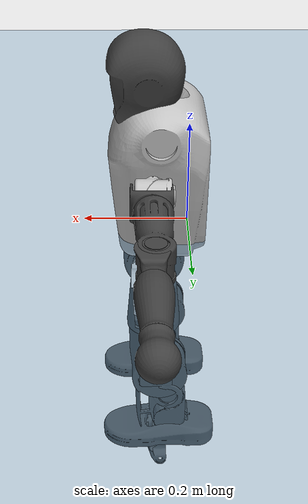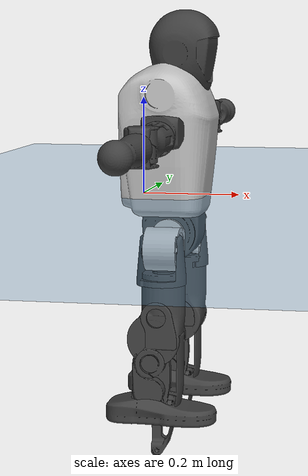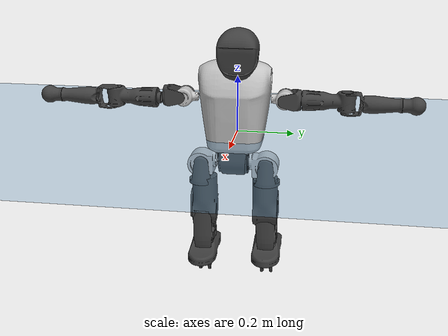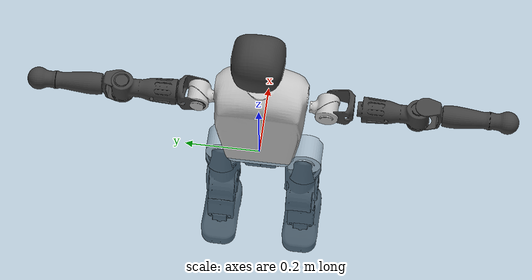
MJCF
<mujoco model="T1">
  <compiler angle="radian" assetdir="assets" balanceinertia="true" inertiafromgeom="false"/>

  <option timestep="0.005" density="1.2" viscosity="2e-05"/>

  <size nkey="1"/>

  <visual>
    <quality shadowsize="8192"/>
    <map shadowclip="0.5"/>
  </visual>

  <default>
    <default class="/">
      <joint armature="0.01" damping="0.01" frictionloss="0.1"/>
      <geom contype="0" conaffinity="0" group="1" solref="-1000 -80"/>
      <site size="0.01 0.005 0.005" group="5"/>
      <general forcelimited="true" biastype="affine" gainprm="25" biasprm="0 -25 -0.6"/>
      <default class="t1">
        <geom rgba="0.25 0.25 0.25 1"/>
        <default class="visual">
          <geom type="mesh" group="2"/>
        </default>
        <default class="collision">
          <geom group="3"/>
        </default>
        <default class="foot">
          <geom size="0.1115 0.05 0.015" type="box" condim="6" group="4" priority="1" solimp="0.015 1 0.015"/>
        </default>
        <default class="reward_collision_sphere">
          <geom group="5" rgba="1 0 0 1"/>
        </default>
      </default>
    </default>
  </default>

  <asset>
    <texture type="skybox" colorspace="auto" name="//unnamed_texture_0" builtin="gradient" rgb1="0.95 0.95 0.95" rgb2="0.95 0.95 0.95" width="100" height="600"/>
    <texture type="2d" colorspace="auto" name="texplane" builtin="checker" rgb1="0.345 0.575 0.748" rgb2="0.345 0.575 0.748" markrgb="1 1 1" width="512" height="512"/>
    <material name="MatPlane" class="/" texture="texplane" texuniform="true" texrepeat="2 2" specular="0.9"/>
    <mesh name="Trunk" class="/" file="Trunk.stl"/>
    <mesh name="H1" class="/" file="H1.stl"/>
    <mesh name="H2" class="/" file="H2.stl"/>
    <mesh name="AL1" class="/" file="AL1.stl"/>
    <mesh name="AL2" class="/" file="AL2.stl"/>
    <mesh name="AL3" class="/" file="AL3.stl"/>
    <mesh name="left_hand_link" class="/" file="left_hand_link.stl"/>
    <mesh name="AR1" class="/" file="AR1.stl"/>
    <mesh name="AR2" class="/" file="AR2.stl"/>
    <mesh name="AR3" class="/" file="AR3.stl"/>
    <mesh name="right_hand_link" class="/" file="right_hand_link.stl"/>
    <mesh name="Waist" class="/" file="Waist.stl"/>
    <mesh name="Hip_Pitch_Left" class="/" file="Hip_Pitch_Left.stl"/>
    <mesh name="Hip_Roll_Left" class="/" file="Hip_Roll_Left.stl"/>
    <mesh name="Hip_Yaw_Left" class="/" file="Hip_Yaw_Left.stl"/>
    <mesh name="Shank_Left" class="/" file="Shank_Left.stl"/>
    <mesh name="Ankle_Cross_Left" class="/" file="Ankle_Cross_Left.stl"/>
    <mesh name="left_foot_link" class="/" file="left_foot_link.stl"/>
    <mesh name="Hip_Pitch_Right" class="/" file="Hip_Pitch_Right.stl"/>
    <mesh name="Hip_Roll_Right" class="/" file="Hip_Roll_Right.stl"/>
    <mesh name="Hip_Yaw_Right" class="/" file="Hip_Yaw_Right.stl"/>
    <mesh name="Shank_Right" class="/" file="Shank_Right.stl"/>
    <mesh name="Ankle_Cross_Right" class="/" file="Ankle_Cross_Right.stl"/>
    <mesh name="right_foot_link" class="/" file="right_foot_link.stl"/>
  </asset>

  <worldbody>
    <geom name="floor" class="/" size="100 100 0.125" type="plane" group="0" material="MatPlane"/>
    <light name="toplight_shadow" class="/" pos="0 0 5" dir="0.0990148 0.0990148 -0.990148" type="directional" ambient="0.04 0.04 0.04" diffuse="0.55 0.55 0.55" specular="0.12 0.12 0.12"/>
    <light name="toplight_fill" class="/" pos="0 0 5" dir="0.0990148 0.0990148 -0.990148" type="directional" castshadow="false" ambient="0.04 0.04 0.04" diffuse="0.3 0.3 0.3" specular="0.08 0.08 0.08"/>
    <body name="trunk" childclass="t1" pos="-0.00187447 -0.000358547 -0.00707311" quat="1 0.000328471 -0.000605139 4.92182e-05">
      <inertial pos="0.0625743 -0.00342583 0.0706456" quat="0.999728 0.0109993 -0.0192643 -0.00716178" mass="11.6425" diaginertia="0.174798 0.143631 0.00784692"/>
      <joint name="//unnamed_joint_0" type="free" armature="0" damping="0" frictionloss="0"/>
      <geom name="//unnamed_geom_1" class="visual" rgba="0.76 0.76 0.76 1" mesh="Trunk"/>
      <geom name="//unnamed_geom_2" class="collision" size="0.0729075 0.09721 0.145815" pos="0.0675075 0 0.0794303" type="box"/>
      <geom name="//unnamed_geom_3" class="reward_collision_sphere" size="0.111792" pos="0.0675075 0 0.0661919"/>
      <geom name="//unnamed_geom_4" class="reward_collision_sphere" size="0.0145815" pos="0.0675075 0.0959868 0"/>
      <geom name="//unnamed_geom_5" class="reward_collision_sphere" size="0.0145815" pos="0.0675075 -0.0959868 0"/>
      <geom name="//unnamed_geom_6" class="reward_collision_sphere" size="0.0145815" pos="0.0675075 0.12083 0.119145"/>
      <geom name="//unnamed_geom_7" class="reward_collision_sphere" size="0.0145815" pos="0.0675075 -0.12083 0.119145"/>
      <site name="imu" pos="-0.0528132 0.0424044 -0.0119733" size="0.009721"/>
      <camera name="track" pos="0 -2.25851 0" quat="0.707107 0.707107 0 0" mode="trackcom"/>
      <camera name="ego_camera" pos="0.137265 0 0.278006" quat="-0.5 -0.5 0.5 0.5"/>
      <body name="H1" pos="0.0721005 0.00418949 0.157374" quat="0.999998 -0.00193917 -0.00032023 -0.000488985">
        <inertial pos="-0.00257565 -0.00225876 0.0377766" quat="0.762316 -0.00936318 0.00221292 0.647133" mass="0.389499" diaginertia="0.000395011 0.000403473 1.68341e-05"/>
        <joint name="AAHead_yaw" pos="0 0 0" axis="0.0061188 0.00528914 0.999967" range="-1.61635 1.47552" armature="0.00942765" damping="0.00660836" frictionloss="0.100228"/>
        <geom name="//unnamed_geom_8" class="visual" mesh="H1"/>
        <body name="H2" pos="0.000449072 0.00909542 0.0406248" quat="1 0.00016641 0.000262895 0.000819684">
          <inertial pos="-0.00223282 -0.00823459 0.059948" quat="0.98785 0.105788 -0.0819734 -0.0790035" mass="0.516134" diaginertia="0.0036697 0.0036753 0.000221664"/>
          <joint name="Head_pitch" pos="0 0 0" axis="-0.0018949 -0.999998 0.000309939" range="-1.21613 0.243082" armature="0.0138283" damping="0.0238938" frictionloss="0.0953541"/>
          <geom name="//unnamed_geom_9" class="visual" mesh="H2"/>
          <geom name="//unnamed_geom_10" class="collision" size="0.077768" pos="0.0112512 0 0.0728111"/>
          <geom name="//unnamed_geom_11" class="reward_collision_sphere" size="0.087489" pos="0.0225025 0 0.0661919"/>
        </body>
      </body>
      <body name="AL1" pos="0.0717552 0.124048 0.148054" quat="0.999999 -0.00107219 0.000501175 0.000945735">
        <inertial pos="-0.00364531 0.0475238 -0.0092723" quat="0.518713 0.485249 -0.501245 0.49419" mass="0.497614" diaginertia="0.0024961 0.0024081 3.6764e-05"/>
        <joint name="Left_Shoulder_Pitch" pos="0 0 0" axis="-0.00309131 0.999982 -0.00517198" stiffness="0.0390224" range="-3.13354 1.32699" armature="0.00996102" damping="0.00950079" frictionloss="0.0950979"/>
        <geom name="//unnamed_geom_12" class="visual" rgba="0.76 0.76 0.76 1" mesh="AL1"/>
        <body name="AL2" pos="0.00316548 0.0443258 -0.000409103" quat="0.999986 0.000641497 -0.00438785 0.00292137">
          <inertial pos="0.00169609 0.0409219 0.00672855" quat="0.485208 0.510177 -0.490759 0.513272" mass="0.111676" diaginertia="0.000624611 0.000511024 1.97019e-05"/>
          <joint name="Left_Shoulder_Roll" pos="0 0 0" axis="-0.998263 0.0588953 0.00167094" stiffness="0.0176046" range="-1.47643 1.77934" armature="0.00806209" damping="0.0547641" frictionloss="0.105944"/>
          <geom name="//unnamed_geom_13" class="visual" mesh="AL2"/>
          <body name="AL3" pos="-0.00177071 0.0596295 -0.000263266" quat="0.999984 -0.000244722 0.00543913 0.00127119">
            <inertial pos="0.00163223 0.0982051 0.000853324" quat="0.728208 0.685047 0.0132253 -0.0157711" mass="0.823727" diaginertia="0.0200637 0.021273 7.26809e-05"/>
            <joint name="Left_Elbow_Pitch" pos="0 0 0" axis="-0.000778807 -0.999936 0.0113226" range="-2.21272 2.29888" armature="0.0105833" damping="0.00570942" frictionloss="0.105855"/>
            <geom name="//unnamed_geom_14" class="visual" mesh="AL3"/>
            <geom name="//unnamed_geom_15" class="collision" size="0.029163 0.0729075" pos="0 0.0564628 0" quat="0.707105 0.707108 0 0" type="cylinder"/>
            <geom name="//unnamed_geom_16" class="reward_collision_sphere" size="0.0349956"/>
            <body name="left_hand_link" pos="0.00503785 0.155947 -0.00501036" quat="0.999989 -0.00105237 -0.00322475 0.00325739">
              <inertial pos="-0.000753119 0.126565 0.00926095" quat="0.694009 0.718924 -0.0183337 0.0341048" mass="0.345382" diaginertia="0.016003 0.0174162 3.24074e-05"/>
              <joint name="Left_Elbow_Yaw" pos="0 0 0" axis="0.0311321 -0.0239449 0.999228" range="-2.42058 -0.140306" armature="0.00910673" damping="0.0307181" frictionloss="0.0459202"/>
              <geom name="//unnamed_geom_17" class="visual" mesh="left_hand_link"/>
              <geom name="//unnamed_geom_18" class="collision" size="0.029163 0.0850588" pos="0 0.146803 0" quat="0.707105 0.707108 0 0" type="cylinder"/>
              <geom name="//unnamed_geom_19" class="reward_collision_sphere" size="0.048605"/>
              <geom name="//unnamed_geom_20" class="reward_collision_sphere" size="0.0340235" pos="0 0.124218 0"/>
              <geom name="//unnamed_geom_21" class="reward_collision_sphere" size="0.0340235" pos="0 0.24279 0"/>
            </body>
          </body>
        </body>
      </body>
      <body name="AR1" pos="0.0726745 -0.125904 0.147425" quat="1 0.000184362 0.00068567 0.000250147">
        <inertial pos="0.00109475 -0.050801 0.00144052" quat="0.497156 0.495849 -0.509336 0.497541" mass="0.45831" diaginertia="0.0024766 0.00233823 3.56322e-05"/>
        <joint name="Right_Shoulder_Pitch" pos="0 0 0" axis="-0.0170131 -0.999822 -0.00813214" range="-1.41405 3.28723" armature="0.0088042" damping="0" frictionloss="0.0941802"/>
        <geom name="//unnamed_geom_22" class="visual" rgba="0.76 0.76 0.76 1" mesh="AR1"/>
        <body name="AR2" pos="0.00925632 -0.0597451 0.00312923" quat="0.999998 -0.000509229 0.000698073 -0.00151888">
          <inertial pos="0.00860147 -0.0451231 0.00615434" quat="0.508345 0.488029 -0.49863 0.504759" mass="0.144784" diaginertia="0.00078194 0.000701349 2.20185e-05"/>
          <joint name="Right_Shoulder_Roll" pos="0 0 0" axis="-0.999962 -0.00855454 0.00140147" range="-1.81229 1.75924" armature="0.0106163" damping="0.00623276" frictionloss="0.140823"/>
          <geom name="//unnamed_geom_23" class="visual" mesh="AR2"/>
          <body name="AR3" pos="0.00371643 -0.0787372 -0.00852747" quat="1 -0.00043622 0.000375543 -0.000289859">
            <inertial pos="-0.000616108 -0.0956201 0.00105388" quat="0.70248 0.709533 0.0258271 0.0491659" mass="0.989017" diaginertia="0.0245206 0.0221914 7.99104e-05"/>
            <joint name="Right_Elbow_Pitch" pos="0 0 0" axis="0.00117913 0.999999 0.000966909" range="-2.28997 2.23576" armature="0.00944244" damping="0" frictionloss="0.0501505"/>
            <geom name="//unnamed_geom_24" class="visual" mesh="AR3"/>
            <geom name="//unnamed_geom_25" class="collision" size="0.029163 0.0729075" pos="0 -0.0564628 0" quat="0.707105 0.707108 0 0" type="cylinder"/>
            <geom name="//unnamed_geom_26" class="reward_collision_sphere" size="0.0349956"/>
            <body name="right_hand_link" pos="0.00842427 -0.166362 -0.00125568" quat="0.999998 -0.000247229 0.000591132 0.00176813">
              <inertial pos="0.000750856 -0.123223 -0.00879314" quat="0.700212 0.712629 -0.0339198 0.0266721" mass="0.341679" diaginertia="0.0176588 0.0172036 3.07269e-05"/>
              <joint name="Right_Elbow_Yaw" pos="0 0 0" axis="0.00201006 0.00888455 0.999959" range="0.140341 2.44094" armature="0.00417218" damping="0.0228284" frictionloss="0.0946271"/>
              <geom name="//unnamed_geom_27" class="visual" mesh="right_hand_link"/>
              <geom name="//unnamed_geom_28" class="collision" size="0.029163 0.0850588" pos="0 -0.146803 0" quat="0.707105 0.707108 0 0" type="cylinder"/>
              <geom name="//unnamed_geom_29" class="reward_collision_sphere" size="0.048605"/>
              <geom name="//unnamed_geom_30" class="reward_collision_sphere" size="0.0340235" pos="0 -0.124218 0"/>
              <geom name="//unnamed_geom_31" class="reward_collision_sphere" size="0.0340235" pos="0 -0.24279 0"/>
            </body>
          </body>
        </body>
      </body>
      <body name="Waist" pos="0.0663066 -0.00171172 -0.0695094" quat="1 0.000225257 0.000343897 -0.000141264">
        <inertial pos="-0.00686439 -0.00026727 0.00525852" quat="0.985626 -0.00332622 -0.168837 -0.00488484" mass="2.41063" diaginertia="0.0105282 0.0118658 0.000662355"/>
        <joint name="Waist" pos="0 0 0" axis="0.00356194 -0.003854 0.999986" range="-1.78486 1.51752" armature="0.0132106" damping="0.00860337" frictionloss="0.0901589"/>
        <geom name="//unnamed_geom_32" class="visual" mesh="Waist"/>
        <body name="Hip_Pitch_Left" pos="0.00907113 0.111294 -0.00210581" quat="0.999988 0.00462977 0.00139507 0.000624994">
          <inertial pos="0.00535442 -0.0186282 -0.0132089" quat="0.975596 0.218856 0.0171613 -0.00446296" mass="0.994639" diaginertia="0.00353914 0.00245303 0.000172187"/>
          <joint name="Left_Hip_Pitch" pos="0 0 0" axis="-0.00188391 0.999996 -0.00215553" range="-1.81254 1.46535" armature="0.00950169" damping="0" frictionloss="0.0987388"/>
          <geom name="//unnamed_geom_33" class="visual" rgba="0.76 0.76 0.76 1" mesh="Hip_Pitch_Left"/>
          <body name="Hip_Roll_Left" pos="-0.0042595 0.00102005 -0.0110921" quat="0.999991 0.00377665 0.00170952 0.000661961">
            <inertial pos="0.00188654 -0.00157424 -0.0348078" quat="0.709614 0.000659439 -0.000834081 0.70459" mass="0.362191" diaginertia="0.00314319 0.0031589 7.37765e-05"/>
            <joint name="Left_Hip_Roll" pos="0 0 0" axis="-0.999992 -0.00272314 0.00284094" stiffness="0.0219046" range="-1.57863 0.221481" armature="0.00981876" damping="0" frictionloss="0.062656"/>
            <geom name="//unnamed_geom_34" class="visual" mesh="Hip_Roll_Left"/>
            <geom name="//unnamed_geom_35" class="reward_collision_sphere" size="0.0534655"/>
            <body name="Hip_Yaw_Left" pos="3.58357e-05 -0.00392523 -0.0535494" quat="0.999997 0.000221768 0.00204281 0.00146263">
              <inertial pos="-0.00756453 -0.000727827 -0.0591444" quat="0.719464 -0.0586469 0.000572052 0.692049" mass="2.08375" diaginertia="0.0472164 0.0529726 0.000315105"/>
              <joint name="Left_Hip_Yaw" pos="0 0 0" axis="0.0286701 -0.0316007 -0.999089" range="-0.988614 1.03069" armature="0.00984146" damping="0.00233419" frictionloss="0.0959138"/>
              <geom name="//unnamed_geom_36" class="visual" mesh="Hip_Yaw_Left"/>
              <geom name="//unnamed_geom_37" class="collision" size="0.048605 0.077768" type="cylinder"/>
              <body name="Shank_Left" pos="-0.016315 0.00162169 -0.0881054" quat="0.999998 0.000794046 -0.00116551 0.00143009">
                <inertial pos="-0.0082103 -0.00118524 -0.0839096" quat="0.996019 0.0275182 -0.0116191 0.0839864" mass="1.53097" diaginertia="0.0651666 0.0587813 0.000238561"/>
                <joint name="Left_Knee_Pitch" pos="0 0 0" axis="-0.000348239 0.999857 -0.0169063" range="-0.0431922 2.34752" armature="0.00909914" damping="0" frictionloss="0.0581466"/>
                <geom name="//unnamed_geom_38" class="visual" mesh="Shank_Left"/>
                <geom name="//unnamed_geom_39" class="collision" size="0.048605 0.0729075" pos="0 0 -0.0794303" type="cylinder"/>
                <geom name="//unnamed_geom_40" class="reward_collision_sphere" size="0.0631865"/>
                <body name="Ankle_Cross_Left" pos="0.00262168 0.000491549 -0.18764" quat="0.999997 -0.00158062 0.00165764 -0.000819731">
                  <inertial pos="-0.00512891 -0.00368708 0.00551642" quat="0.448989 0.54432 0.551553 0.444875" mass="0.0602831" diaginertia="4.1728e-05 4.48904e-05 1.35481e-06"/>
                  <joint name="Left_Ankle_Pitch" pos="0 0 0" axis="0.0111463 0.999789 -0.0172734" range="-0.650427 0.25832" armature="0.0117331" damping="0" frictionloss="0.0563264"/>
                  <geom name="//unnamed_geom_41" class="visual" mesh="Ankle_Cross_Left"/>
                  <body name="left_foot_link" pos="-0.00873309 0.00103486 0.00152532" quat="1 -0.000818573 0.000267128 -0.000191402">
                    <inertial pos="0.00107221 0.00943061 -0.00599643" quat="-0.000808072 0.613984 0.00399533 0.789308" mass="0.653831" diaginertia="0.00450381 0.00439345 0.000272734"/>
                    <joint name="Left_Ankle_Roll" pos="0 0 0" axis="-0.99998 -0.00527007 0.00361605" range="-0.339795 0.488731" armature="0.00965577" damping="0.0115157" frictionloss="0.103286"/>
                    <geom name="//unnamed_geom_42" class="visual" mesh="left_foot_link"/>
                    <geom name="left_foot" class="foot" size="0.0990926 0.0396988 0.012794" pos="0.0112512 0 -0.00992879"/>
                    <geom name="//unnamed_geom_44" class="reward_collision_sphere" size="0.0505492" pos="0.0112512 0 -0.00992879"/>
                    <geom name="//unnamed_geom_45" class="reward_collision_sphere" size="0.029163" pos="0.106887 -0.0259729 -0.00992879"/>
                    <geom name="//unnamed_geom_46" class="reward_collision_sphere" size="0.029163" pos="-0.0787587 -0.0259729 -0.00992879"/>
                    <site name="left_foot" class="foot" pos="0.0112512 0 -0.00992879" size="0.009721"/>
                  </body>
                </body>
              </body>
            </body>
          </body>
        </body>
        <body name="Hip_Pitch_Right" pos="0.000881499 -0.117771 -0.0020737" quat="0.999998 0.000443101 0.000235452 -0.00206442">
          <inertial pos="0.00206539 0.00737558 -0.0212788" quat="0.971149 -0.235009 -0.00172957 -0.0404725" mass="0.924648" diaginertia="0.00323718 0.00265612 0.000143444"/>
          <joint name="Right_Hip_Pitch" pos="0 0 0" axis="-0.00538937 -0.999327 0.036287" stiffness="0.0161034" range="-1.5996 1.78731" armature="0.00632112" damping="0.00788806" frictionloss="0.0765619"/>
          <geom name="//unnamed_geom_47" class="visual" rgba="0.76 0.76 0.76 1" mesh="Hip_Pitch_Right"/>
          <body name="Hip_Roll_Right" pos="-0.00253394 0.00372756 -0.0155787" quat="0.999985 0.00447398 0.000662992 0.00302377">
            <inertial pos="-0.00925308 -0.00169932 -0.0298129" quat="0.710824 -0.0180417 0.0273308 0.702607" mass="0.380376" diaginertia="0.00364487 0.00299131 7.0787e-05"/>
            <joint name="Right_Hip_Roll" pos="0 0 0" axis="-0.999899 -0.0113457 -0.00860629" range="-0.195837 1.42689" armature="0.0105546" damping="0" frictionloss="0.095196"/>
            <geom name="//unnamed_geom_48" class="visual" mesh="Hip_Roll_Right"/>
            <geom name="//unnamed_geom_49" class="reward_collision_sphere" size="0.0534655"/>
            <body name="Hip_Yaw_Right" pos="0.000215751 0.00675402 -0.0540967" quat="0.99999 2.37105e-05 0.00361027 0.00255153">
              <inertial pos="-0.0127838 -0.000482756 -0.0606618" quat="0.715538 -0.0534559 -0.0174764 0.696307" mass="1.73267" diaginertia="0.0368095 0.0357471 0.000280838"/>
              <joint name="Right_Hip_Yaw" pos="0 0 0" axis="-0.00113497 0.00783894 -0.999969" range="-1.05116 1.21474" armature="0.0092872" damping="0.00249628" frictionloss="0.140918"/>
              <geom name="//unnamed_geom_50" class="visual" mesh="Hip_Yaw_Right"/>
              <geom name="//unnamed_geom_51" class="collision" size="0.048605 0.077768" type="cylinder"/>
              <body name="Shank_Right" pos="-0.00619912 -0.00576854 -0.0861685" quat="0.99999 -0.00251448 0.00150536 0.00328203">
                <inertial pos="-0.015117 -0.00419839 -0.0821878" quat="0.999135 0.00553647 -0.0301852 -0.0280557" mass="1.41165" diaginertia="0.0638282 0.0701617 0.000268372"/>
                <joint name="Right_Knee_Pitch" pos="0 0 0" axis="-0.00234058 -0.999995 -0.00231443" range="-2.32302 -0.0303909" armature="0.0106573" damping="0" frictionloss="0.0834802"/>
                <geom name="//unnamed_geom_52" class="visual" mesh="Shank_Right"/>
                <geom name="//unnamed_geom_53" class="collision" size="0.048605 0.0729075" pos="0 0 -0.0794303" type="cylinder"/>
                <geom name="//unnamed_geom_54" class="reward_collision_sphere" size="0.0631865"/>
                <body name="Ankle_Cross_Right" pos="0.00222901 -0.000904388 -0.178957" quat="0.999991 0.00211352 0.00366242 1.61685e-05">
                  <inertial pos="-0.00469602 0.0013323 -0.00634554" quat="0.43379 0.560533 0.550572 0.441021" mass="0.0798647" diaginertia="5.62244e-05 5.05384e-05 1.52841e-06"/>
                  <joint name="Right_Ankle_Pitch" pos="0 0 0" axis="-0.0433852 -0.998487 -0.0337858" range="-0.363918 0.991305" armature="0.00626306" damping="0.0323416" frictionloss="0.14938"/>
                  <geom name="//unnamed_geom_55" class="visual" mesh="Ankle_Cross_Right"/>
                  <body name="right_foot_link" pos="-0.00595645 -0.000337579 -0.0107202" quat="0.999998 -0.00133346 -0.000899183 0.00123915">
                    <inertial pos="-0.000984181 0.000708356 0.00208804" quat="0.000857138 0.621681 0.00406401 0.78326" mass="0.551105" diaginertia="0.00505334 0.0043167 0.000280309"/>
                    <joint name="Right_Ankle_Roll" pos="0 0 0" axis="-0.999369 -0.0146238 0.0323833" range="-0.658696 0.371879" armature="0.0132289" damping="0.010907" frictionloss="0.104502"/>
                    <geom name="//unnamed_geom_56" class="visual" mesh="right_foot_link"/>
                    <geom name="right_foot" class="foot" size="0.148646 0.0337367 0.0125821" pos="0.0112512 0 -0.00992879"/>
                    <geom name="//unnamed_geom_58" class="reward_collision_sphere" size="0.038884"/>
                    <geom name="//unnamed_geom_59" class="reward_collision_sphere" size="0.029163" pos="0.0112512 0 -0.00992879"/>
                    <geom name="//unnamed_geom_60" class="reward_collision_sphere" size="0.029163" pos="0.106887 0.0259729 -0.00992879"/>
                    <geom name="//unnamed_geom_61" class="reward_collision_sphere" size="0.029163" pos="-0.0787587 0.0259729 -0.00992879"/>
                    <site name="right_foot" class="foot" pos="0.0112512 0 -0.00992879" size="0.009721"/>
                  </body>
                </body>
              </body>
            </body>
          </body>
        </body>
      </body>
    </body>
  </worldbody>

  <contact>
    <pair class="/" geom1="floor" geom2="left_foot" name="//unnamed_contact_0"/>
    <pair class="/" geom1="floor" geom2="right_foot" name="//unnamed_contact_1"/>
  </contact>

  <actuator>
    <general name="AAHead_yaw" class="/" joint="AAHead_yaw" forcerange="-7.6621 7.6621" gainprm="20.146" biasprm="0 -20.146 -0.557849"/>
    <general name="Head_pitch" class="/" joint="Head_pitch" forcerange="-7.09745 7.09745" gainprm="20.146" biasprm="0 -20.146 -0.557849"/>
    <general name="Left_Shoulder_Pitch" class="/" joint="Left_Shoulder_Pitch" forcerange="-15.9702 15.9702" gainprm="20.146" biasprm="0 -20.146 -0.557849"/>
    <general name="Left_Shoulder_Roll" class="/" joint="Left_Shoulder_Roll" forcerange="-16.4338 16.4338" gainprm="20.146" biasprm="0 -20.146 -0.557849"/>
    <general name="Left_Elbow_Pitch" class="/" joint="Left_Elbow_Pitch" forcerange="-12.4526 12.4526" gainprm="20.146" biasprm="0 -20.146 -0.557849"/>
    <general name="Left_Elbow_Yaw" class="/" joint="Left_Elbow_Yaw" forcerange="-17.2528 17.2528" gainprm="20.146" biasprm="0 -20.146 -0.557849"/>
    <general name="Right_Shoulder_Pitch" class="/" joint="Right_Shoulder_Pitch" forcerange="-18.1418 18.1418" gainprm="20.146" biasprm="0 -20.146 -0.557849"/>
    <general name="Right_Shoulder_Roll" class="/" joint="Right_Shoulder_Roll" forcerange="-17.4976 17.4976" gainprm="20.146" biasprm="0 -20.146 -0.557849"/>
    <general name="Right_Elbow_Pitch" class="/" joint="Right_Elbow_Pitch" forcerange="-18.2418 18.2418" gainprm="20.146" biasprm="0 -20.146 -0.557849"/>
    <general name="Right_Elbow_Yaw" class="/" joint="Right_Elbow_Yaw" forcerange="-12.1623 12.1623" gainprm="20.146" biasprm="0 -20.146 -0.557849"/>
    <general name="Waist" class="/" joint="Waist" forcerange="-26.0618 26.0618" gainprm="20.146" biasprm="0 -20.146 -0.557849"/>
    <general name="Left_Hip_Pitch" class="/" joint="Left_Hip_Pitch" forcerange="-61.2951 61.2951" gainprm="20.146" biasprm="0 -20.146 -0.557849"/>
    <general name="Left_Hip_Roll" class="/" joint="Left_Hip_Roll" forcerange="-29.388 29.388" gainprm="20.146" biasprm="0 -20.146 -0.557849"/>
    <general name="Left_Hip_Yaw" class="/" joint="Left_Hip_Yaw" forcerange="-27.6929 27.6929" gainprm="20.146" biasprm="0 -20.146 -0.557849"/>
    <general name="Left_Knee_Pitch" class="/" joint="Left_Knee_Pitch" forcerange="-40.0575 40.0575" gainprm="20.146" biasprm="0 -20.146 -0.557849"/>
    <general name="Left_Ankle_Pitch" class="/" joint="Left_Ankle_Pitch" forcerange="-19.8559 19.8559" gainprm="20.146" biasprm="0 -20.146 -0.557849"/>
    <general name="Left_Ankle_Roll" class="/" joint="Left_Ankle_Roll" forcerange="-14.2146 14.2146" gainprm="20.146" biasprm="0 -20.146 -0.557849"/>
    <general name="Right_Hip_Pitch" class="/" joint="Right_Hip_Pitch" forcerange="-27.9417 27.9417" gainprm="20.146" biasprm="0 -20.146 -0.557849"/>
    <general name="Right_Hip_Roll" class="/" joint="Right_Hip_Roll" forcerange="-28.9759 28.9759" gainprm="20.146" biasprm="0 -20.146 -0.557849"/>
    <general name="Right_Hip_Yaw" class="/" joint="Right_Hip_Yaw" forcerange="-27.7489 27.7489" gainprm="20.146" biasprm="0 -20.146 -0.557849"/>
    <general name="Right_Knee_Pitch" class="/" joint="Right_Knee_Pitch" forcerange="-47.0206 47.0206" gainprm="20.146" biasprm="0 -20.146 -0.557849"/>
    <general name="Right_Ankle_Pitch" class="/" joint="Right_Ankle_Pitch" forcerange="-21.6906 21.6906" gainprm="20.146" biasprm="0 -20.146 -0.557849"/>
    <general name="Right_Ankle_Roll" class="/" joint="Right_Ankle_Roll" forcerange="-19.8797 19.8797" gainprm="20.146" biasprm="0 -20.146 -0.557849"/>
  </actuator>

  <sensor>
    <gyro site="imu" name="imu_angular_velocity"/>
    <velocimeter site="imu" name="imu_linear_velocity"/>
    <framelinvel objtype="site" objname="left_foot" name="left_foot_global_linear_velocity"/>
    <framelinvel objtype="site" objname="right_foot" name="right_foot_global_linear_velocity"/>
  </sensor>

  <keyframe>
    <key name="home" qpos="0 0 0.6385 1 0 0 0 0 0 0 1.4 0 -0.4 0 -1.4 0 0.4 0 -0.4 0 0 0.8 -0.4 0 0.4 0 0 -0.8 0.4 0"/>
  </keyframe>
</mujoco>
